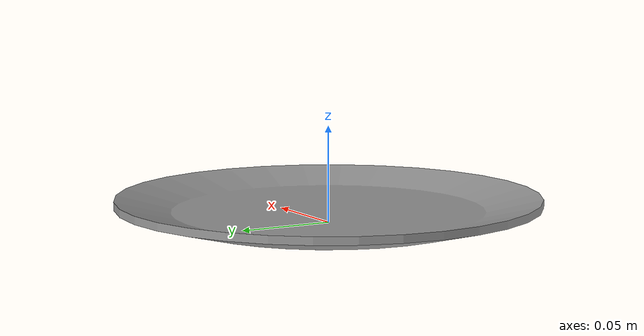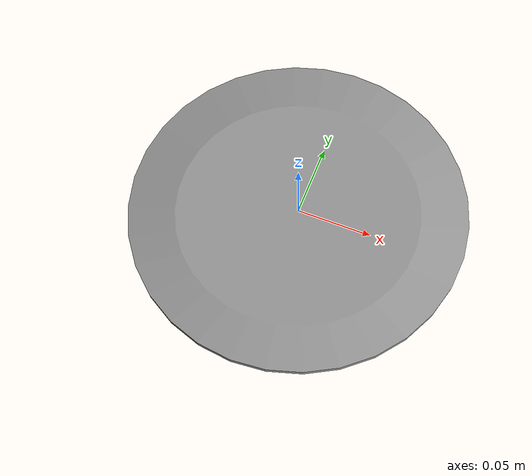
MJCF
<mujoco model="plate">

    <default>
        <default class="collision">
            <geom group="3" rgba=".2 .6 .2 .3" friction="0.7 0.01 0.005"/>
        </default>
    </default>

    <asset>
        <mesh name="plate_mesh" file="meshes/plate/plate.stl"/>
        <material name="color_plate" rgba="0.6 0.6 0.6 1" specular="0.8" shininess="1.0" reflectance="0.5"/>
    </asset>

    <worldbody>
        <body name="plate_base" pos="0 0 0">
            <inertial pos="0 0 0" mass="0.1" diaginertia="0.001 0.001 0.001"/>

            <geom type="mesh" mesh="plate_mesh" material="color_plate" contype="0" conaffinity="0"/>

            <geom class="collision" type="box" mesh="plate_mesh" solref="0.01 1"/>
        </body>
    </worldbody>

</mujoco>
